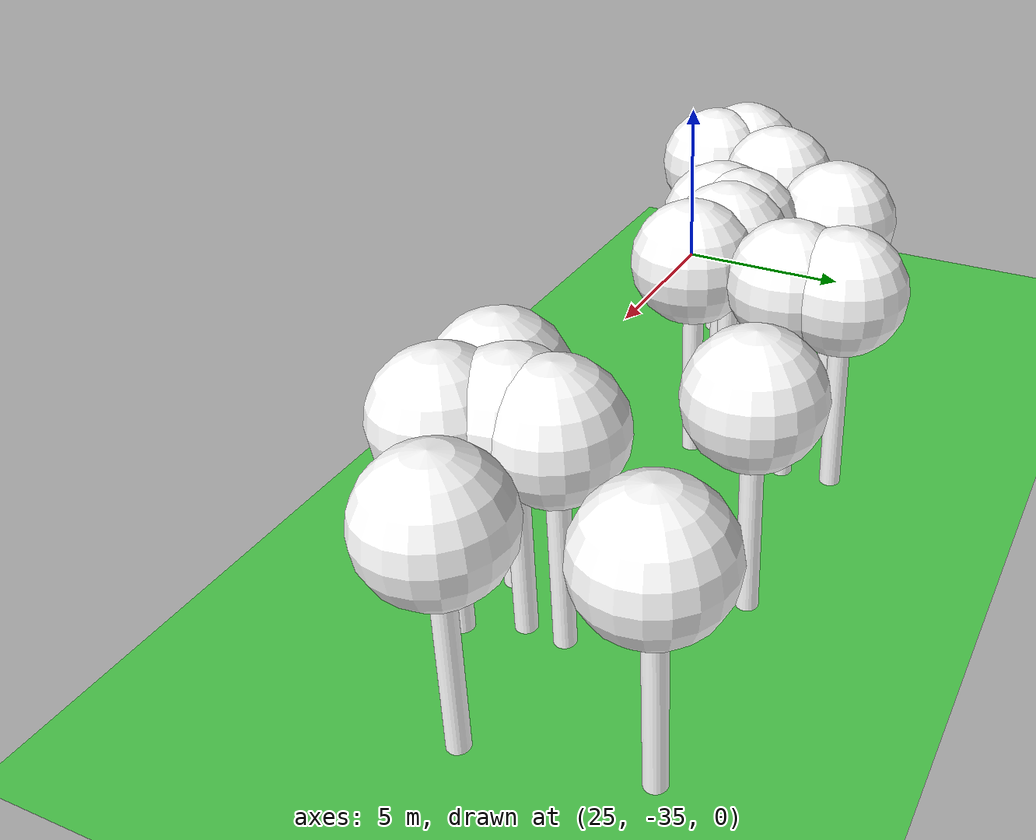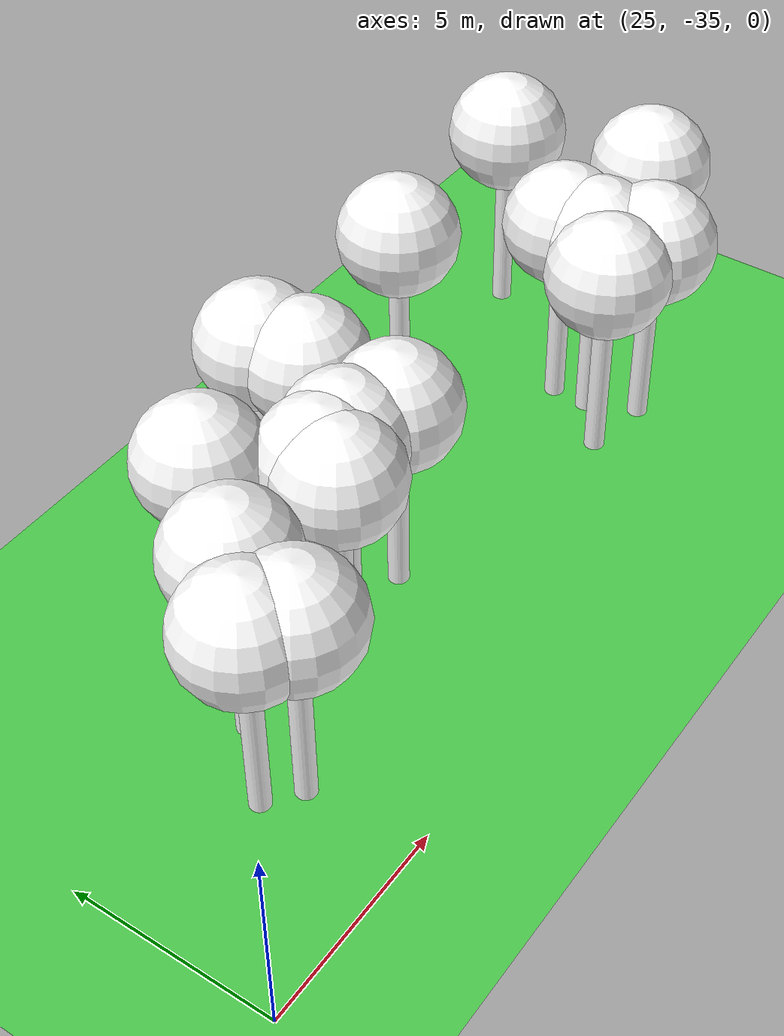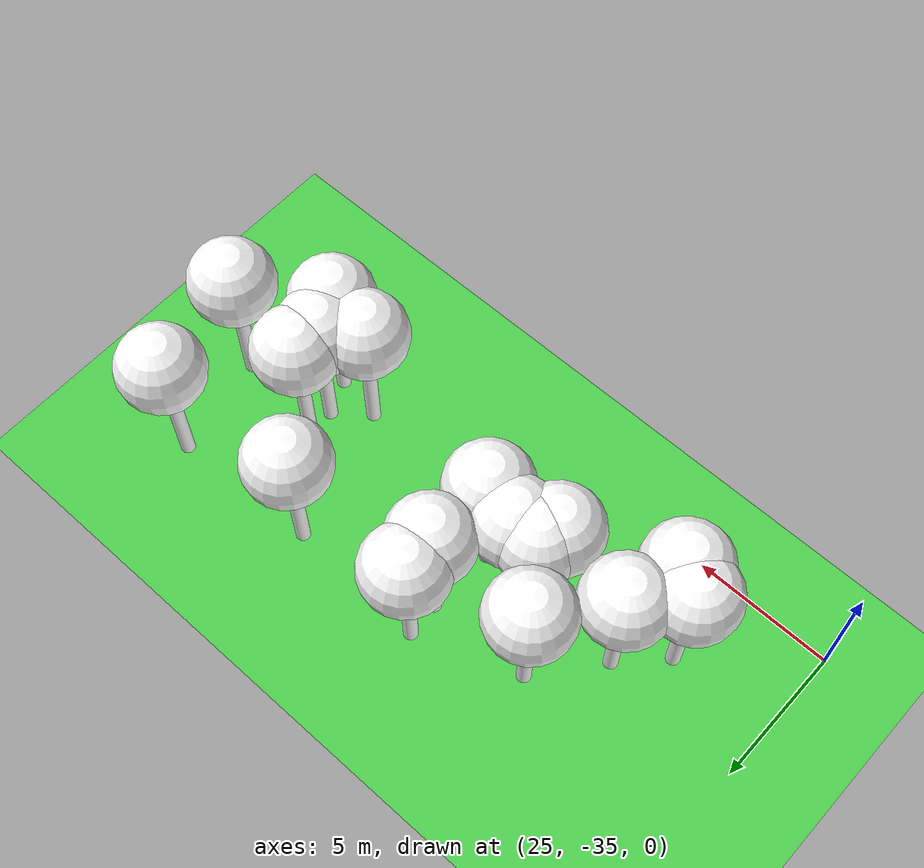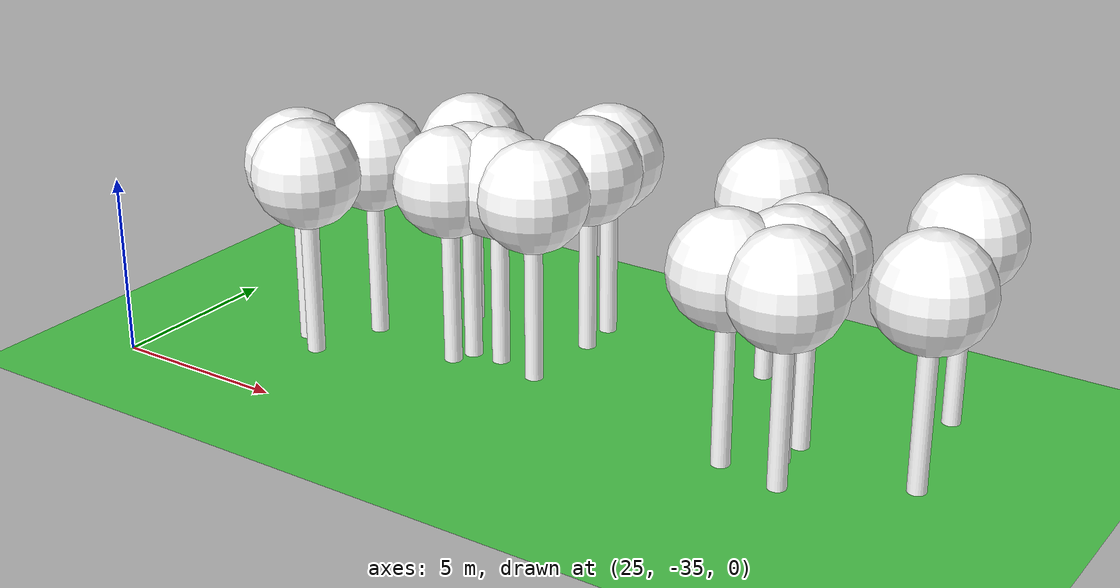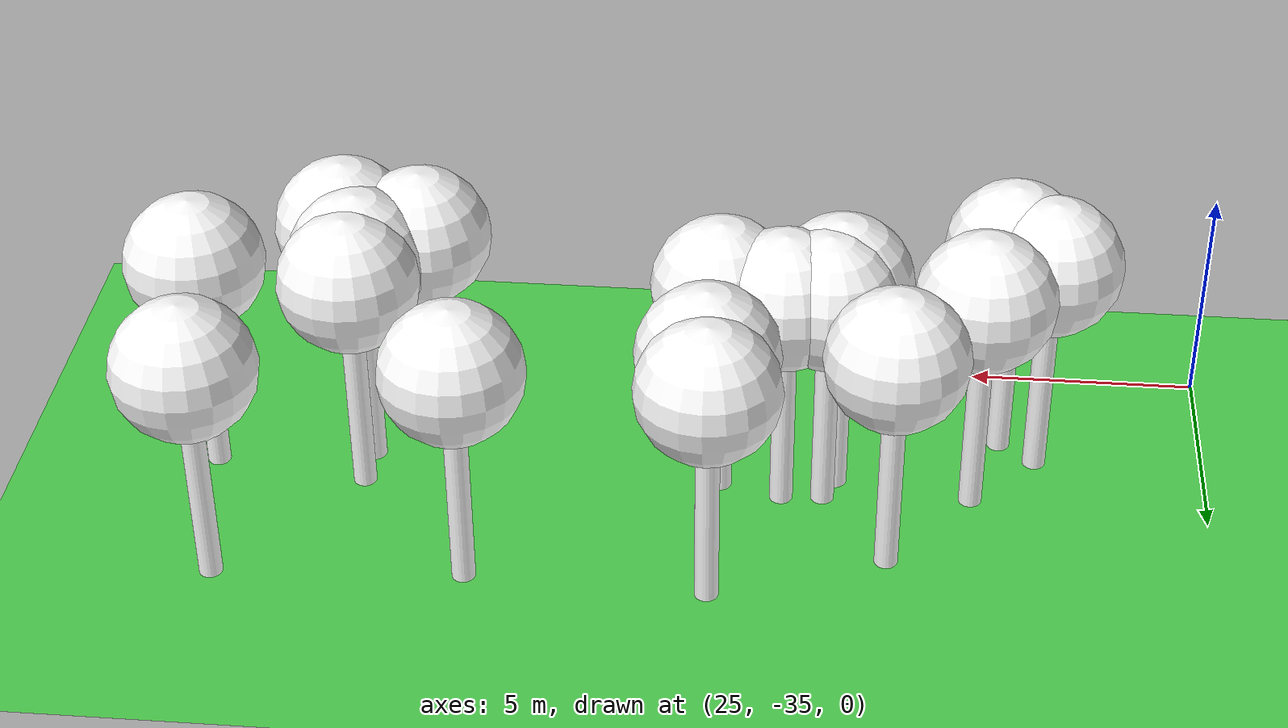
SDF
<sdf version="1.8">
 <world name="forest_world">
  <model name="tree_simple469">
   <static>1</static>
   <link name="link">
    <pose>0 0 0.1 0 -0 0</pose>
    <collision name="collision_trunk">
     <pose>0 0 2 0 -0 0</pose>
     <geometry><cylinder><radius>0.25</radius><length>4</length></cylinder></geometry>
    </collision>
    <collision name="collision_treetop">
     <pose>0 0 5.2 0 -0 0</pose>
     <geometry><sphere><radius>1.5</radius></sphere></geometry>
    </collision>
    <visual name="trunk_469">
     <pose>0 0 2 0 -0 0</pose>
     <geometry><cylinder><radius>0.25</radius><length>4</length></cylinder></geometry>
     <material>
      <ambient>0.5 0.5 0.5 1</ambient>
      <diffuse>1.0 1.0 1.0 1</diffuse>
      <specular>0.0 0.0 0.0 1</specular>
      <pbr>
       <metal>
        <albedo_map>file://textures/tree_simple_trunk.jpg</albedo_map>
        <metalness>0.0</metalness>
        <roughness>0.8</roughness>
       </metal>
      </pbr>
     </material>
    </visual>
    <visual name="treetop_469">
     <pose>0 0 5.2 0 -0 0</pose>
     <geometry><sphere><radius>1.5</radius></sphere></geometry>
     <material>
      <ambient>0.5 0.5 0.5 1</ambient>
      <diffuse>1.0 1.0 1.0 1</diffuse>
      <specular>0.0 0.0 0.0 1</specular>
      <pbr>
       <metal>
        <albedo_map>file://textures/tree_simple_treetop.jpg</albedo_map>
        <metalness>0.0</metalness>
        <roughness>0.9</roughness>
       </metal>
      </pbr>
     </material>
    </visual>
   </link>
   <pose>28.6908934165 -31.7515844244 0 0 -0 0</pose>
  </model>
  <model name="tree_simple400">
   <static>1</static>
   <link name="link">
    <pose>0 0 0.1 0 -0 0</pose>
    <collision name="collision_trunk">
     <pose>0 0 2 0 -0 0</pose>
     <geometry><cylinder><radius>0.25</radius><length>4</length></cylinder></geometry>
    </collision>
    <collision name="collision_treetop">
     <pose>0 0 5.2 0 -0 0</pose>
     <geometry><sphere><radius>1.5</radius></sphere></geometry>
    </collision>
    <visual name="trunk_400">
     <pose>0 0 2 0 -0 0</pose>
     <geometry><cylinder><radius>0.25</radius><length>4</length></cylinder></geometry>
     <material>
      <ambient>0.5 0.5 0.5 1</ambient>
      <diffuse>1.0 1.0 1.0 1</diffuse>
      <specular>0.0 0.0 0.0 1</specular>
      <pbr>
       <metal>
        <albedo_map>file://textures/tree_simple_trunk.jpg</albedo_map>
        <metalness>0.0</metalness>
        <roughness>0.8</roughness>
       </metal>
      </pbr>
     </material>
    </visual>
    <visual name="treetop_400">
     <pose>0 0 5.2 0 -0 0</pose>
     <geometry><sphere><radius>1.5</radius></sphere></geometry>
     <material>
      <ambient>0.5 0.5 0.5 1</ambient>
      <diffuse>1.0 1.0 1.0 1</diffuse>
      <specular>0.0 0.0 0.0 1</specular>
      <pbr>
       <metal>
        <albedo_map>file://textures/tree_simple_treetop.jpg</albedo_map>
        <metalness>0.0</metalness>
        <roughness>0.9</roughness>
       </metal>
      </pbr>
     </material>
    </visual>
   </link>
   <pose>43.2651902792 -29.893141503 0 0 -0 0</pose>
  </model>
  <model name="tree_simple379">
   <static>1</static>
   <link name="link">
    <pose>0 0 0.1 0 -0 0</pose>
    <collision name="collision_trunk">
     <pose>0 0 2 0 -0 0</pose>
     <geometry><cylinder><radius>0.25</radius><length>4</length></cylinder></geometry>
    </collision>
    <collision name="collision_treetop">
     <pose>0 0 5.2 0 -0 0</pose>
     <geometry><sphere><radius>1.5</radius></sphere></geometry>
    </collision>
    <visual name="trunk_379">
     <pose>0 0 2 0 -0 0</pose>
     <geometry><cylinder><radius>0.25</radius><length>4</length></cylinder></geometry>
     <material>
      <ambient>0.5 0.5 0.5 1</ambient>
      <diffuse>1.0 1.0 1.0 1</diffuse>
      <specular>0.0 0.0 0.0 1</specular>
      <pbr>
       <metal>
        <albedo_map>file://textures/tree_simple_trunk.jpg</albedo_map>
        <metalness>0.0</metalness>
        <roughness>0.8</roughness>
       </metal>
      </pbr>
     </material>
    </visual>
    <visual name="treetop_379">
     <pose>0 0 5.2 0 -0 0</pose>
     <geometry><sphere><radius>1.5</radius></sphere></geometry>
     <material>
      <ambient>0.5 0.5 0.5 1</ambient>
      <diffuse>1.0 1.0 1.0 1</diffuse>
      <specular>0.0 0.0 0.0 1</specular>
      <pbr>
       <metal>
        <albedo_map>file://textures/tree_simple_treetop.jpg</albedo_map>
        <metalness>0.0</metalness>
        <roughness>0.9</roughness>
       </metal>
      </pbr>
     </material>
    </visual>
   </link>
   <pose>35.6338366469 -27.9469397224 0 0 -0 0</pose>
  </model>
  <model name="tree_simple361">
   <static>1</static>
   <link name="link">
    <pose>0 0 0.1 0 -0 0</pose>
    <collision name="collision_trunk">
     <pose>0 0 2 0 -0 0</pose>
     <geometry><cylinder><radius>0.25</radius><length>4</length></cylinder></geometry>
    </collision>
    <collision name="collision_treetop">
     <pose>0 0 5.2 0 -0 0</pose>
     <geometry><sphere><radius>1.5</radius></sphere></geometry>
    </collision>
    <visual name="trunk_361">
     <pose>0 0 2 0 -0 0</pose>
     <geometry><cylinder><radius>0.25</radius><length>4</length></cylinder></geometry>
     <material>
      <ambient>0.5 0.5 0.5 1</ambient>
      <diffuse>1.0 1.0 1.0 1</diffuse>
      <specular>0.0 0.0 0.0 1</specular>
      <pbr>
       <metal>
        <albedo_map>file://textures/tree_simple_trunk.jpg</albedo_map>
        <metalness>0.0</metalness>
        <roughness>0.8</roughness>
       </metal>
      </pbr>
     </material>
    </visual>
    <visual name="treetop_361">
     <pose>0 0 5.2 0 -0 0</pose>
     <geometry><sphere><radius>1.5</radius></sphere></geometry>
     <material>
      <ambient>0.5 0.5 0.5 1</ambient>
      <diffuse>1.0 1.0 1.0 1</diffuse>
      <specular>0.0 0.0 0.0 1</specular>
      <pbr>
       <metal>
        <albedo_map>file://textures/tree_simple_treetop.jpg</albedo_map>
        <metalness>0.0</metalness>
        <roughness>0.9</roughness>
       </metal>
      </pbr>
     </material>
    </visual>
   </link>
   <pose>35.5366757962 -26.7239082098 0 0 -0 0</pose>
  </model>
  <model name="tree_simple330">
   <static>1</static>
   <link name="link">
    <pose>0 0 0.1 0 -0 0</pose>
    <collision name="collision_trunk">
     <pose>0 0 2 0 -0 0</pose>
     <geometry><cylinder><radius>0.25</radius><length>4</length></cylinder></geometry>
    </collision>
    <collision name="collision_treetop">
     <pose>0 0 5.2 0 -0 0</pose>
     <geometry><sphere><radius>1.5</radius></sphere></geometry>
    </collision>
    <visual name="trunk_330">
     <pose>0 0 2 0 -0 0</pose>
     <geometry><cylinder><radius>0.25</radius><length>4</length></cylinder></geometry>
     <material>
      <ambient>0.5 0.5 0.5 1</ambient>
      <diffuse>1.0 1.0 1.0 1</diffuse>
      <specular>0.0 0.0 0.0 1</specular>
      <pbr>
       <metal>
        <albedo_map>file://textures/tree_simple_trunk.jpg</albedo_map>
        <metalness>0.0</metalness>
        <roughness>0.8</roughness>
       </metal>
      </pbr>
     </material>
    </visual>
    <visual name="treetop_330">
     <pose>0 0 5.2 0 -0 0</pose>
     <geometry><sphere><radius>1.5</radius></sphere></geometry>
     <material>
      <ambient>0.5 0.5 0.5 1</ambient>
      <diffuse>1.0 1.0 1.0 1</diffuse>
      <specular>0.0 0.0 0.0 1</specular>
      <pbr>
       <metal>
        <albedo_map>file://textures/tree_simple_treetop.jpg</albedo_map>
        <metalness>0.0</metalness>
        <roughness>0.9</roughness>
       </metal>
      </pbr>
     </material>
    </visual>
   </link>
   <pose>46.6176543064 -30.3534647409 0 0 -0 0</pose>
  </model>
  <model name="tree_simple321">
   <static>1</static>
   <link name="link">
    <pose>0 0 0.1 0 -0 0</pose>
    <collision name="collision_trunk">
     <pose>0 0 2 0 -0 0</pose>
     <geometry><cylinder><radius>0.25</radius><length>4</length></cylinder></geometry>
    </collision>
    <collision name="collision_treetop">
     <pose>0 0 5.2 0 -0 0</pose>
     <geometry><sphere><radius>1.5</radius></sphere></geometry>
    </collision>
    <visual name="trunk_321">
     <pose>0 0 2 0 -0 0</pose>
     <geometry><cylinder><radius>0.25</radius><length>4</length></cylinder></geometry>
     <material>
      <ambient>0.5 0.5 0.5 1</ambient>
      <diffuse>1.0 1.0 1.0 1</diffuse>
      <specular>0.0 0.0 0.0 1</specular>
      <pbr>
       <metal>
        <albedo_map>file://textures/tree_simple_trunk.jpg</albedo_map>
        <metalness>0.0</metalness>
        <roughness>0.8</roughness>
       </metal>
      </pbr>
     </material>
    </visual>
    <visual name="treetop_321">
     <pose>0 0 5.2 0 -0 0</pose>
     <geometry><sphere><radius>1.5</radius></sphere></geometry>
     <material>
      <ambient>0.5 0.5 0.5 1</ambient>
      <diffuse>1.0 1.0 1.0 1</diffuse>
      <specular>0.0 0.0 0.0 1</specular>
      <pbr>
       <metal>
        <albedo_map>file://textures/tree_simple_treetop.jpg</albedo_map>
        <metalness>0.0</metalness>
        <roughness>0.9</roughness>
       </metal>
      </pbr>
     </material>
    </visual>
   </link>
   <pose>42.046648374 -31.7938593585 0 0 -0 0</pose>
  </model>
  <model name="tree_simple298">
   <static>1</static>
   <link name="link">
    <pose>0 0 0.1 0 -0 0</pose>
    <collision name="collision_trunk">
     <pose>0 0 2 0 -0 0</pose>
     <geometry><cylinder><radius>0.25</radius><length>4</length></cylinder></geometry>
    </collision>
    <collision name="collision_treetop">
     <pose>0 0 5.2 0 -0 0</pose>
     <geometry><sphere><radius>1.5</radius></sphere></geometry>
    </collision>
    <visual name="trunk_298">
     <pose>0 0 2 0 -0 0</pose>
     <geometry><cylinder><radius>0.25</radius><length>4</length></cylinder></geometry>
     <material>
      <ambient>0.5 0.5 0.5 1</ambient>
      <diffuse>1.0 1.0 1.0 1</diffuse>
      <specular>0.0 0.0 0.0 1</specular>
      <pbr>
       <metal>
        <albedo_map>file://textures/tree_simple_trunk.jpg</albedo_map>
        <metalness>0.0</metalness>
        <roughness>0.8</roughness>
       </metal>
      </pbr>
     </material>
    </visual>
    <visual name="treetop_298">
     <pose>0 0 5.2 0 -0 0</pose>
     <geometry><sphere><radius>1.5</radius></sphere></geometry>
     <material>
      <ambient>0.5 0.5 0.5 1</ambient>
      <diffuse>1.0 1.0 1.0 1</diffuse>
      <specular>0.0 0.0 0.0 1</specular>
      <pbr>
       <metal>
        <albedo_map>file://textures/tree_simple_treetop.jpg</albedo_map>
        <metalness>0.0</metalness>
        <roughness>0.9</roughness>
       </metal>
      </pbr>
     </material>
    </visual>
   </link>
   <pose>33.2901714534 -30.1267743678 0 0 -0 0</pose>
  </model>
  <model name="tree_simple263">
   <static>1</static>
   <link name="link">
    <pose>0 0 0.1 0 -0 0</pose>
    <collision name="collision_trunk">
     <pose>0 0 2 0 -0 0</pose>
     <geometry><cylinder><radius>0.25</radius><length>4</length></cylinder></geometry>
    </collision>
    <collision name="collision_treetop">
     <pose>0 0 5.2 0 -0 0</pose>
     <geometry><sphere><radius>1.5</radius></sphere></geometry>
    </collision>
    <visual name="trunk_263">
     <pose>0 0 2 0 -0 0</pose>
     <geometry><cylinder><radius>0.25</radius><length>4</length></cylinder></geometry>
     <material>
      <ambient>0.5 0.5 0.5 1</ambient>
      <diffuse>1.0 1.0 1.0 1</diffuse>
      <specular>0.0 0.0 0.0 1</specular>
      <pbr>
       <metal>
        <albedo_map>file://textures/tree_simple_trunk.jpg</albedo_map>
        <metalness>0.0</metalness>
        <roughness>0.8</roughness>
       </metal>
      </pbr>
     </material>
    </visual>
    <visual name="treetop_263">
     <pose>0 0 5.2 0 -0 0</pose>
     <geometry><sphere><radius>1.5</radius></sphere></geometry>
     <material>
      <ambient>0.5 0.5 0.5 1</ambient>
      <diffuse>1.0 1.0 1.0 1</diffuse>
      <specular>0.0 0.0 0.0 1</specular>
      <pbr>
       <metal>
        <albedo_map>file://textures/tree_simple_treetop.jpg</albedo_map>
        <metalness>0.0</metalness>
        <roughness>0.9</roughness>
       </metal>
      </pbr>
     </material>
    </visual>
   </link>
   <pose>40.6294575453 -26.8945764261 0 0 -0 0</pose>
  </model>
  <model name="tree_simple255">
   <static>1</static>
   <link name="link">
    <pose>0 0 0.1 0 -0 0</pose>
    <collision name="collision_trunk">
     <pose>0 0 2 0 -0 0</pose>
     <geometry><cylinder><radius>0.25</radius><length>4</length></cylinder></geometry>
    </collision>
    <collision name="collision_treetop">
     <pose>0 0 5.2 0 -0 0</pose>
     <geometry><sphere><radius>1.5</radius></sphere></geometry>
    </collision>
    <visual name="trunk_255">
     <pose>0 0 2 0 -0 0</pose>
     <geometry><cylinder><radius>0.25</radius><length>4</length></cylinder></geometry>
     <material>
      <ambient>0.5 0.5 0.5 1</ambient>
      <diffuse>1.0 1.0 1.0 1</diffuse>
      <specular>0.0 0.0 0.0 1</specular>
      <pbr>
       <metal>
        <albedo_map>file://textures/tree_simple_trunk.jpg</albedo_map>
        <metalness>0.0</metalness>
        <roughness>0.8</roughness>
       </metal>
      </pbr>
     </material>
    </visual>
    <visual name="treetop_255">
     <pose>0 0 5.2 0 -0 0</pose>
     <geometry><sphere><radius>1.5</radius></sphere></geometry>
     <material>
      <ambient>0.5 0.5 0.5 1</ambient>
      <diffuse>1.0 1.0 1.0 1</diffuse>
      <specular>0.0 0.0 0.0 1</specular>
      <pbr>
       <metal>
        <albedo_map>file://textures/tree_simple_treetop.jpg</albedo_map>
        <metalness>0.0</metalness>
        <roughness>0.9</roughness>
       </metal>
      </pbr>
     </material>
    </visual>
   </link>
   <pose>30.0970419452 -30.3026780561 0 0 -0 0</pose>
  </model>
  <model name="tree_simple179">
   <static>1</static>
   <link name="link">
    <pose>0 0 0.1 0 -0 0</pose>
    <collision name="collision_trunk">
     <pose>0 0 2 0 -0 0</pose>
     <geometry><cylinder><radius>0.25</radius><length>4</length></cylinder></geometry>
    </collision>
    <collision name="collision_treetop">
     <pose>0 0 5.2 0 -0 0</pose>
     <geometry><sphere><radius>1.5</radius></sphere></geometry>
    </collision>
    <visual name="trunk_179">
     <pose>0 0 2 0 -0 0</pose>
     <geometry><cylinder><radius>0.25</radius><length>4</length></cylinder></geometry>
     <material>
      <ambient>0.5 0.5 0.5 1</ambient>
      <diffuse>1.0 1.0 1.0 1</diffuse>
      <specular>0.0 0.0 0.0 1</specular>
      <pbr>
       <metal>
        <albedo_map>file://textures/tree_simple_trunk.jpg</albedo_map>
        <metalness>0.0</metalness>
        <roughness>0.8</roughness>
       </metal>
      </pbr>
     </material>
    </visual>
    <visual name="treetop_179">
     <pose>0 0 5.2 0 -0 0</pose>
     <geometry><sphere><radius>1.5</radius></sphere></geometry>
     <material>
      <ambient>0.5 0.5 0.5 1</ambient>
      <diffuse>1.0 1.0 1.0 1</diffuse>
      <specular>0.0 0.0 0.0 1</specular>
      <pbr>
       <metal>
        <albedo_map>file://textures/tree_simple_treetop.jpg</albedo_map>
        <metalness>0.0</metalness>
        <roughness>0.9</roughness>
       </metal>
      </pbr>
     </material>
    </visual>
   </link>
   <pose>33.0376036796 -30.7285936232 0 0 -0 0</pose>
  </model>
  <model name="tree_simple137">
   <static>1</static>
   <link name="link">
    <pose>0 0 0.1 0 -0 0</pose>
    <collision name="collision_trunk">
     <pose>0 0 2 0 -0 0</pose>
     <geometry><cylinder><radius>0.25</radius><length>4</length></cylinder></geometry>
    </collision>
    <collision name="collision_treetop">
     <pose>0 0 5.2 0 -0 0</pose>
     <geometry><sphere><radius>1.5</radius></sphere></geometry>
    </collision>
    <visual name="trunk_137">
     <pose>0 0 2 0 -0 0</pose>
     <geometry><cylinder><radius>0.25</radius><length>4</length></cylinder></geometry>
     <material>
      <ambient>0.5 0.5 0.5 1</ambient>
      <diffuse>1.0 1.0 1.0 1</diffuse>
      <specular>0.0 0.0 0.0 1</specular>
      <pbr>
       <metal>
        <albedo_map>file://textures/tree_simple_trunk.jpg</albedo_map>
        <metalness>0.0</metalness>
        <roughness>0.8</roughness>
       </metal>
      </pbr>
     </material>
    </visual>
    <visual name="treetop_137">
     <pose>0 0 5.2 0 -0 0</pose>
     <geometry><sphere><radius>1.5</radius></sphere></geometry>
     <material>
      <ambient>0.5 0.5 0.5 1</ambient>
      <diffuse>1.0 1.0 1.0 1</diffuse>
      <specular>0.0 0.0 0.0 1</specular>
      <pbr>
       <metal>
        <albedo_map>file://textures/tree_simple_treetop.jpg</albedo_map>
        <metalness>0.0</metalness>
        <roughness>0.9</roughness>
       </metal>
      </pbr>
     </material>
    </visual>
   </link>
   <pose>43.7452610824 -32.0584108729 0 0 -0 0</pose>
  </model>
  <model name="tree_simple133">
   <static>1</static>
   <link name="link">
    <pose>0 0 0.1 0 -0 0</pose>
    <collision name="collision_trunk">
     <pose>0 0 2 0 -0 0</pose>
     <geometry><cylinder><radius>0.25</radius><length>4</length></cylinder></geometry>
    </collision>
    <collision name="collision_treetop">
     <pose>0 0 5.2 0 -0 0</pose>
     <geometry><sphere><radius>1.5</radius></sphere></geometry>
    </collision>
    <visual name="trunk_133">
     <pose>0 0 2 0 -0 0</pose>
     <geometry><cylinder><radius>0.25</radius><length>4</length></cylinder></geometry>
     <material>
      <ambient>0.5 0.5 0.5 1</ambient>
      <diffuse>1.0 1.0 1.0 1</diffuse>
      <specular>0.0 0.0 0.0 1</specular>
      <pbr>
       <metal>
        <albedo_map>file://textures/tree_simple_trunk.jpg</albedo_map>
        <metalness>0.0</metalness>
        <roughness>0.8</roughness>
       </metal>
      </pbr>
     </material>
    </visual>
    <visual name="treetop_133">
     <pose>0 0 5.2 0 -0 0</pose>
     <geometry><sphere><radius>1.5</radius></sphere></geometry>
     <material>
      <ambient>0.5 0.5 0.5 1</ambient>
      <diffuse>1.0 1.0 1.0 1</diffuse>
      <specular>0.0 0.0 0.0 1</specular>
      <pbr>
       <metal>
        <albedo_map>file://textures/tree_simple_treetop.jpg</albedo_map>
        <metalness>0.0</metalness>
        <roughness>0.9</roughness>
       </metal>
      </pbr>
     </material>
    </visual>
   </link>
   <pose>34.1791859659 -30.0610700111 0 0 -0 0</pose>
  </model>
  <model name="tree_simple128">
   <static>1</static>
   <link name="link">
    <pose>0 0 0.1 0 -0 0</pose>
    <collision name="collision_trunk">
     <pose>0 0 2 0 -0 0</pose>
     <geometry><cylinder><radius>0.25</radius><length>4</length></cylinder></geometry>
    </collision>
    <collision name="collision_treetop">
     <pose>0 0 5.2 0 -0 0</pose>
     <geometry><sphere><radius>1.5</radius></sphere></geometry>
    </collision>
    <visual name="trunk_128">
     <pose>0 0 2 0 -0 0</pose>
     <geometry><cylinder><radius>0.25</radius><length>4</length></cylinder></geometry>
     <material>
      <ambient>0.5 0.5 0.5 1</ambient>
      <diffuse>1.0 1.0 1.0 1</diffuse>
      <specular>0.0 0.0 0.0 1</specular>
      <pbr>
       <metal>
        <albedo_map>file://textures/tree_simple_trunk.jpg</albedo_map>
        <metalness>0.0</metalness>
        <roughness>0.8</roughness>
       </metal>
      </pbr>
     </material>
    </visual>
    <visual name="treetop_128">
     <pose>0 0 5.2 0 -0 0</pose>
     <geometry><sphere><radius>1.5</radius></sphere></geometry>
     <material>
      <ambient>0.5 0.5 0.5 1</ambient>
      <diffuse>1.0 1.0 1.0 1</diffuse>
      <specular>0.0 0.0 0.0 1</specular>
      <pbr>
       <metal>
        <albedo_map>file://textures/tree_simple_treetop.jpg</albedo_map>
        <metalness>0.0</metalness>
        <roughness>0.9</roughness>
       </metal>
      </pbr>
     </material>
    </visual>
   </link>
   <pose>45.9201829733 -26.5855260125 0 0 -0 0</pose>
  </model>
  <model name="tree_simple57">
   <static>1</static>
   <link name="link">
    <pose>0 0 0.1 0 -0 0</pose>
    <collision name="collision_trunk">
     <pose>0 0 2 0 -0 0</pose>
     <geometry><cylinder><radius>0.25</radius><length>4</length></cylinder></geometry>
    </collision>
    <collision name="collision_treetop">
     <pose>0 0 5.2 0 -0 0</pose>
     <geometry><sphere><radius>1.5</radius></sphere></geometry>
    </collision>
    <visual name="trunk_57">
     <pose>0 0 2 0 -0 0</pose>
     <geometry><cylinder><radius>0.25</radius><length>4</length></cylinder></geometry>
     <material>
      <ambient>0.5 0.5 0.5 1</ambient>
      <diffuse>1.0 1.0 1.0 1</diffuse>
      <specular>0.0 0.0 0.0 1</specular>
      <pbr>
       <metal>
        <albedo_map>file://textures/tree_simple_trunk.jpg</albedo_map>
        <metalness>0.0</metalness>
        <roughness>0.8</roughness>
       </metal>
      </pbr>
     </material>
    </visual>
    <visual name="treetop_57">
     <pose>0 0 5.2 0 -0 0</pose>
     <geometry><sphere><radius>1.5</radius></sphere></geometry>
     <material>
      <ambient>0.5 0.5 0.5 1</ambient>
      <diffuse>1.0 1.0 1.0 1</diffuse>
      <specular>0.0 0.0 0.0 1</specular>
      <pbr>
       <metal>
        <albedo_map>file://textures/tree_simple_treetop.jpg</albedo_map>
        <metalness>0.0</metalness>
        <roughness>0.9</roughness>
       </metal>
      </pbr>
     </material>
    </visual>
   </link>
   <pose>43.2092275704 -30.8438737216 0 0 -0 0</pose>
  </model>
  <model name="tree_simple31">
   <static>1</static>
   <link name="link">
    <pose>0 0 0.1 0 -0 0</pose>
    <collision name="collision_trunk">
     <pose>0 0 2 0 -0 0</pose>
     <geometry><cylinder><radius>0.25</radius><length>4</length></cylinder></geometry>
    </collision>
    <collision name="collision_treetop">
     <pose>0 0 5.2 0 -0 0</pose>
     <geometry><sphere><radius>1.5</radius></sphere></geometry>
    </collision>
    <visual name="trunk_31">
     <pose>0 0 2 0 -0 0</pose>
     <geometry><cylinder><radius>0.25</radius><length>4</length></cylinder></geometry>
     <material>
      <ambient>0.5 0.5 0.5 1</ambient>
      <diffuse>1.0 1.0 1.0 1</diffuse>
      <specular>0.0 0.0 0.0 1</specular>
      <pbr>
       <metal>
        <albedo_map>file://textures/tree_simple_trunk.jpg</albedo_map>
        <metalness>0.0</metalness>
        <roughness>0.8</roughness>
       </metal>
      </pbr>
     </material>
    </visual>
    <visual name="treetop_31">
     <pose>0 0 5.2 0 -0 0</pose>
     <geometry><sphere><radius>1.5</radius></sphere></geometry>
     <material>
      <ambient>0.5 0.5 0.5 1</ambient>
      <diffuse>1.0 1.0 1.0 1</diffuse>
      <specular>0.0 0.0 0.0 1</specular>
      <pbr>
       <metal>
        <albedo_map>file://textures/tree_simple_treetop.jpg</albedo_map>
        <metalness>0.0</metalness>
        <roughness>0.9</roughness>
       </metal>
      </pbr>
     </material>
    </visual>
   </link>
   <pose>29.4678634043 -32.342330319 0 0 -0 0</pose>
  </model>
  <model name="tree_simple9">
   <static>1</static>
   <link name="link">
    <pose>0 0 0.1 0 -0 0</pose>
    <collision name="collision_trunk">
     <pose>0 0 2 0 -0 0</pose>
     <geometry><cylinder><radius>0.25</radius><length>4</length></cylinder></geometry>
    </collision>
    <collision name="collision_treetop">
     <pose>0 0 5.2 0 -0 0</pose>
     <geometry><sphere><radius>1.5</radius></sphere></geometry>
    </collision>
    <visual name="trunk_9">
     <pose>0 0 2 0 -0 0</pose>
     <geometry><cylinder><radius>0.25</radius><length>4</length></cylinder></geometry>
     <material>
      <ambient>0.5 0.5 0.5 1</ambient>
      <diffuse>1.0 1.0 1.0 1</diffuse>
      <specular>0.0 0.0 0.0 1</specular>
      <pbr>
       <metal>
        <albedo_map>file://textures/tree_simple_trunk.jpg</albedo_map>
        <metalness>0.0</metalness>
        <roughness>0.8</roughness>
       </metal>
      </pbr>
     </material>
    </visual>
    <visual name="treetop_9">
     <pose>0 0 5.2 0 -0 0</pose>
     <geometry><sphere><radius>1.5</radius></sphere></geometry>
     <material>
      <ambient>0.5 0.5 0.5 1</ambient>
      <diffuse>1.0 1.0 1.0 1</diffuse>
      <specular>0.0 0.0 0.0 1</specular>
      <pbr>
       <metal>
        <albedo_map>file://textures/tree_simple_treetop.jpg</albedo_map>
        <metalness>0.0</metalness>
        <roughness>0.9</roughness>
       </metal>
      </pbr>
     </material>
    </visual>
   </link>
   <pose>31.866196036 -28.0908269066 0 0 -0 0</pose>
  </model>
  <model name="tree_simple1">
   <static>1</static>
   <link name="link">
    <pose>0 0 0.1 0 -0 0</pose>
    <collision name="collision_trunk">
     <pose>0 0 2 0 -0 0</pose>
     <geometry><cylinder><radius>0.25</radius><length>4</length></cylinder></geometry>
    </collision>
    <collision name="collision_treetop">
     <pose>0 0 5.2 0 -0 0</pose>
     <geometry><sphere><radius>1.5</radius></sphere></geometry>
    </collision>
    <visual name="trunk_1">
     <pose>0 0 2 0 -0 0</pose>
     <geometry><cylinder><radius>0.25</radius><length>4</length></cylinder></geometry>
     <material>
      <ambient>0.5 0.5 0.5 1</ambient>
      <diffuse>1.0 1.0 1.0 1</diffuse>
      <specular>0.0 0.0 0.0 1</specular>
      <pbr>
       <metal>
        <albedo_map>file://textures/tree_simple_trunk.jpg</albedo_map>
        <metalness>0.0</metalness>
        <roughness>0.8</roughness>
       </metal>
      </pbr>
     </material>
    </visual>
    <visual name="treetop_1">
     <pose>0 0 5.2 0 -0 0</pose>
     <geometry><sphere><radius>1.5</radius></sphere></geometry>
     <material>
      <ambient>0.5 0.5 0.5 1</ambient>
      <diffuse>1.0 1.0 1.0 1</diffuse>
      <specular>0.0 0.0 0.0 1</specular>
      <pbr>
       <metal>
        <albedo_map>file://textures/tree_simple_treetop.jpg</albedo_map>
        <metalness>0.0</metalness>
        <roughness>0.9</roughness>
       </metal>
      </pbr>
     </material>
    </visual>
   </link>
   <pose>35.5272832609 -30.417089687 0 0 -0 0</pose>
  </model>
  <model name="ground_plane">
   <static>true</static>
   <link name="link">
    <collision name="collision">
     <geometry><plane><normal>0 0 1</normal><size>250 250</size></plane></geometry>
     <surface><friction><ode><mu>1</mu><mu2>1</mu2></ode></friction></surface>
    </collision>
    <visual name="grass">
     <cast_shadows>false</cast_shadows>
     <geometry><mesh><uri>file://textures/grass_plane.dae</uri><scale>1 1 1</scale></mesh></geometry>
     <material>
      <ambient>0.2 0.6 0.2 1</ambient>
      <diffuse>0.3 0.8 0.3 1</diffuse>
      <specular>0.1 0.1 0.1 1</specular>
      <pbr>
       <metal>
        <albedo_map>file://textures/grass_seamless.jpg</albedo_map>
        <metalness>0.0</metalness>
        <roughness>0.9</roughness>
       </metal>
      </pbr>
     </material>
    </visual>
   </link>
  </model>
 </world>
</sdf>
